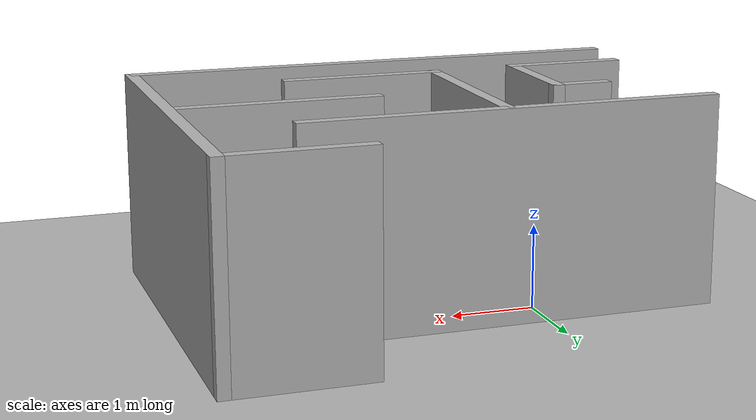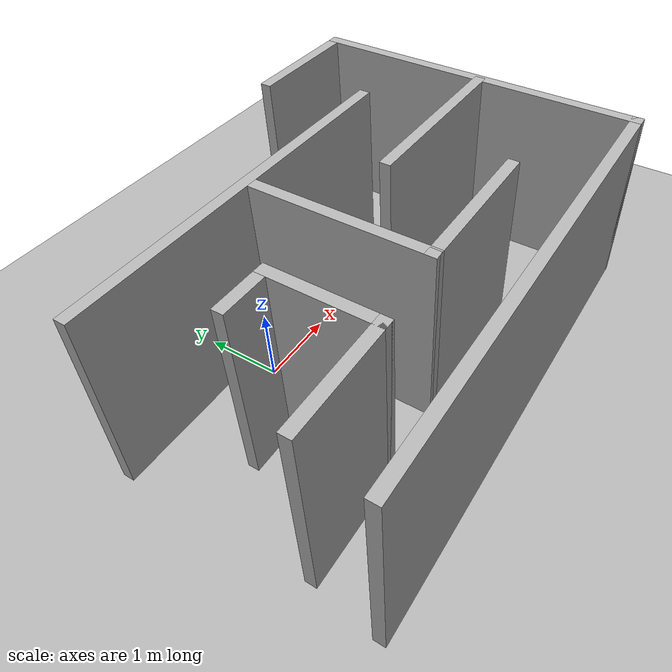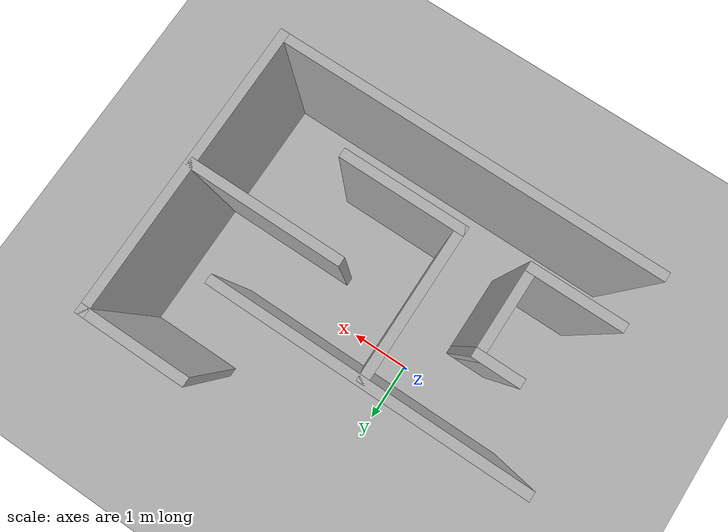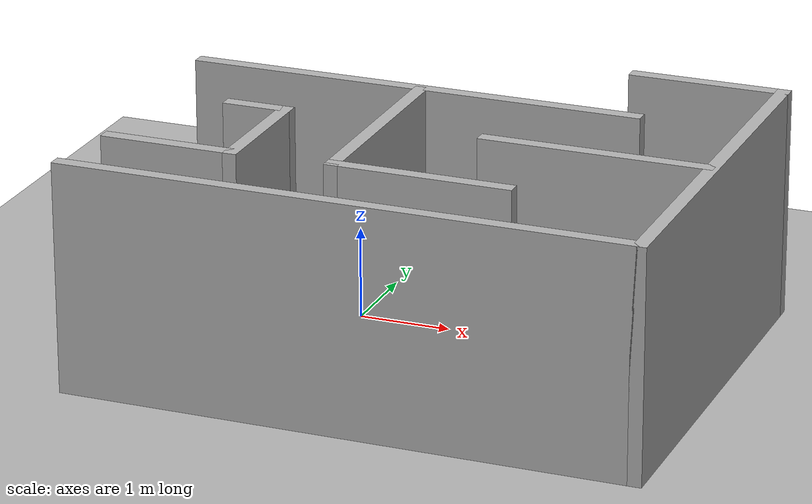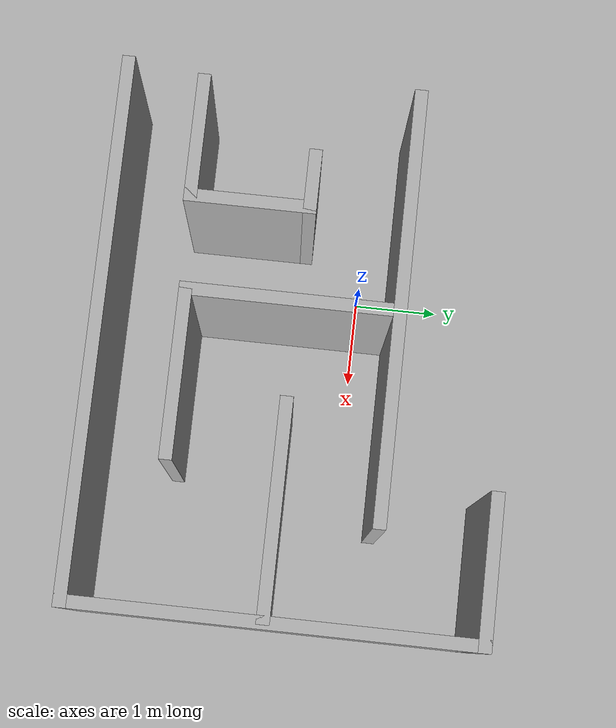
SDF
<sdf version='1.7'>
  <world name='default'>
    <light name='sun' type='directional'>
      <cast_shadows>1</cast_shadows>
      <pose>0 0 10 0 -0 0</pose>
      <diffuse>0.8 0.8 0.8 1</diffuse>
      <specular>0.2 0.2 0.2 1</specular>
      <attenuation>
        <range>1000</range>
        <constant>0.9</constant>
        <linear>0.01</linear>
        <quadratic>0.001</quadratic>
      </attenuation>
      <direction>-0.5 0.1 -0.9</direction>
      <spot>
        <inner_angle>0</inner_angle>
        <outer_angle>0</outer_angle>
        <falloff>0</falloff>
      </spot>
    </light>
    <model name='ground_plane'>
      <static>1</static>
      <link name='link'>
        <collision name='collision'>
          <geometry>
            <plane>
              <normal>0 0 1</normal>
              <size>100 100</size>
            </plane>
          </geometry>
          <surface>
            <contact>
              <collide_bitmask>65535</collide_bitmask>
              <ode/>
            </contact>
            <friction>
              <ode>
                <mu>100</mu>
                <mu2>50</mu2>
              </ode>
              <torsional>
                <ode/>
              </torsional>
            </friction>
            <bounce/>
          </surface>
          <max_contacts>10</max_contacts>
        </collision>
        <visual name='visual'>
          <cast_shadows>0</cast_shadows>
          <geometry>
            <plane>
              <normal>0 0 1</normal>
              <size>100 100</size>
            </plane>
          </geometry>
          <material>
            <ambient>0.7 0.7 0.7 1</ambient>
            <diffuse>0.7 0.7 0.7 1</diffuse>
            <specular>0.1 0.1 0.1 1</specular>
          </material>
        </visual>
        <self_collide>0</self_collide>
        <enable_wind>0</enable_wind>
        <kinematic>0</kinematic>
      </link>
    </model>
    <gravity>0 0 -9.8</gravity>
    <magnetic_field>6e-06 2.3e-05 -4.2e-05</magnetic_field>
    <atmosphere type='adiabatic'/>
    <physics type='ode'>
      <max_step_size>0.001</max_step_size>
      <real_time_factor>1</real_time_factor>
      <real_time_update_rate>1000</real_time_update_rate>
    </physics>
    <scene>
      <ambient>0.4 0.4 0.4 1</ambient>
      <background>0.7 0.7 0.7 1</background>
      <shadows>1</shadows>
    </scene>
    <audio>
      <device>default</device>
    </audio>
    <wind/>
    <spherical_coordinates>
      <surface_model>EARTH_WGS84</surface_model>
      <latitude_deg>0</latitude_deg>
      <longitude_deg>0</longitude_deg>
      <elevation>0</elevation>
      <heading_deg>0</heading_deg>
    </spherical_coordinates>
    <model name='world_turtle'>
      <pose>1.02679 -0.048222 0 0 -0 0</pose>
      <link name='Wall_0'>
        <collision name='Wall_0_Collision'>
          <geometry>
            <box>
              <size>4.5 0.15 2.5</size>
            </box>
          </geometry>
          <pose>0 0 1.25 0 -0 0</pose>
          <max_contacts>10</max_contacts>
          <surface>
            <contact>
              <ode/>
            </contact>
            <bounce/>
            <friction>
              <torsional>
                <ode/>
              </torsional>
              <ode/>
            </friction>
          </surface>
        </collision>
        <sdf version='1.7'>
  <world name='default'>
    <light name='sun' type='directional'>
      <cast_shadows>1</cast_shadows>
      <pose>0 0 10 0 -0 0</pose>
      <diffuse>0.8 0.8 0.8 1</diffuse>
      <specular>0.2 0.2 0.2 1</specular>
      <attenuation>
        <range>1000</range>
        <constant>0.9</constant>
        <linear>0.01</linear>
        <quadratic>0.001</quadratic>
      </attenuation>
      <direction>-0.5 0.1 -0.9</direction>
      <spot>
        <inner_angle>0</inner_angle>
        <outer_angle>0</outer_angle>
        <falloff>0</falloff>
      </spot>
    </light>
    <model name='ground_plane'>
      <static>1</static>
      <link name='link'>
        <collision name='collision'>
          <geometry>
            <plane>
              <normal>0 0 1</normal>
              <size>100 100</size>
            </plane>
          </geometry>
          <surface>
            <contact>
              <collide_bitmask>65535</collide_bitmask>
              <ode/>
            </contact>
            <friction>
              <ode>
                <mu>100</mu>
                <mu2>50</mu2>
              </ode>
              <torsional>
                <ode/>
              </torsional>
            </friction>
            <bounce/>
          </surface>
          <max_contacts>10</max_contacts>
        </collision>
        <visual name='visual'>
          <cast_shadows>0</cast_shadows>
          <geometry>
            <plane>
              <normal>0 0 1</normal>
              <size>100 100</size>
            </plane>
          </geometry>
          <material>
            <ambient>0.7 0.7 0.7 1</ambient>
            <diffuse>0.7 0.7 0.7 1</diffuse>
            <specular>0.1 0.1 0.1 1</specular>
          </material>
        </visual>
        <self_collide>0</self_collide>
        <enable_wind>0</enable_wind>
        <kinematic>0</kinematic>
      </link>
    </model>
    <gravity>0 0 -9.8</gravity>
    <magnetic_field>6e-06 2.3e-05 -4.2e-05</magnetic_field>
    <atmosphere type='adiabatic'/>
    <physics type='ode'>
      <max_step_size>0.001</max_step_size>
      <real_time_factor>1</real_time_factor>
      <real_time_update_rate>1000</real_time_update_rate>
    </physics>
    <scene>
      <ambient>0.4 0.4 0.4 1</ambient>
      <background>0.7 0.7 0.7 1</background>
      <shadows>1</shadows>
    </scene>
    <audio>
      <device>default</device>
    </audio>
    <wind/>
    <spherical_coordinates>
      <surface_model>EARTH_WGS84</surface_model>
      <latitude_deg>0</latitude_deg>
      <longitude_deg>0</longitude_deg>
      <elevation>0</elevation>
      <heading_deg>0</heading_deg>
    </spherical_coordinates>
    <model name='world_turtle'>
      <pose>1.02679 -0.048222 0 0 -0 0</pose>
      <link name='Wall_0'>
        <collision name='Wall_0_Collision'>
          <geometry>
            <box>
              <size>4.5 0.15 2.5</size>
            </box>
          </geometry>
          <pose>0 0 1.25 0 -0 0</pose>
          <max_contacts>10</max_contacts>
          <surface>
            <contact>
              <ode/>
            </contact>
            <bounce/>
            <friction>
              <torsional>
                <ode/>
              </torsional>
              <ode/>
            </friction>
          </surface>
        </collision>
        <visual name='Wall_0_Visual'>
          <pose>0 0 1.25 0 -0 0</pose>
          <geometry>
            <box>
              <size>4.5 0.15 2.5</size>
            </box>
          </geometry>
          <material>
            <script>
              <material>
  <ambient>0.7 0.7 0.7 1</ambient>
  <diffuse>0.7 0.7 0.7 1</diffuse>
  <specular>0.1 0.1 0.1 1</specular>
</material>
            </script>
            <ambient>1 1 1 1</ambient>
          </material>
          <meta>
            <layer>0</layer>
          </meta>
        </visual>
        <pose>-3.05 -0.6875 0 0 -0 -1.5708</pose>
        <self_collide>0</self_collide>
        <enable_wind>0</enable_wind>
        <kinematic>0</kinematic>
      </link>
      <link name='Wall_1'>
        <collision name='Wall_1_Collision'>
          <geometry>
            <box>
              <size>6.25 0.15 2.5</size>
            </box>
          </geometry>
          <pose>0 0 1.25 0 -0 0</pose>
          <max_contacts>10</max_contacts>
          <surface>
            <contact>
              <ode/>
            </contact>
            <bounce/>
            <friction>
              <torsional>
                <ode/>
              </torsional>
              <ode/>
            </friction>
          </surface>
        </collision>
        <visual name='Wall_1_Visual'>
          <pose>0 0 1.25 0 -0 0</pose>
          <geometry>
            <box>
              <size>6.25 0.15 2.5</size>
            </box>
          </geometry>
          <material>
  <ambient>0.7 0.7 0.7 1</ambient>
  <diffuse>0.7 0.7 0.7 1</diffuse>
  <specular>0.1 0.1 0.1 1</specular>
</material>
          <meta>
            <layer>0</layer>
          </meta>
        </visual>
        <pose>0 -2.8625 0 0 -0 0</pose>
        <self_collide>0</self_collide>
        <enable_wind>0</enable_wind>
        <kinematic>0</kinematic>
      </link>
      <link name='Wall_11'>
        <collision name='Wall_11_Collision'>
          <geometry>
            <box>
              <size>2 0.15 2.5</size>
            </box>
          </geometry>
          <pose>0 0 1.25 0 -0 0</pose>
          <max_contacts>10</max_contacts>
          <surface>
            <contact>
              <ode/>
            </contact>
            <bounce/>
            <friction>
              <torsional>
                <ode/>
              </torsional>
              <ode/>
            </friction>
          </surface>
        </collision>
        <visual name='Wall_11_Visual'>
          <pose>0 0 1.25 0 -0 0</pose>
          <geometry>
            <box>
              <size>2 0.15 2.5</size>
            </box>
          </geometry>
         <material>
  <ambient>0.7 0.7 0.7 1</ambient>
  <diffuse>0.7 0.7 0.7 1</diffuse>
  <specular>0.1 0.1 0.1 1</specular>
</material>
          <meta>
            <layer>0</layer>
          </meta>
        </visual>
        <pose>0.415 -1.9125 0 0 -0 0</pose>
        <self_collide>0</self_collide>
        <enable_wind>0</enable_wind>
        <kinematic>0</kinematic>
      </link>
      <link name='Wall_13'>
        <collision name='Wall_13_Collision'>
          <geometry>
            <box>
              <size>1.5 0.15 2.5</size>
            </box>
          </geometry>
          <pose>0 0 1.25 0 -0 0</pose>
          <max_contacts>10</max_contacts>
          <surface>
            <contact>
              <ode/>
            </contact>
            <bounce/>
            <friction>
              <torsional>
                <ode/>
              </torsional>
              <ode/>
            </friction>
          </surface>
        </collision>
        <visual name='Wall_13_Visual'>
          <pose>0 0 1.25 0 -0 0</pose>
          <geometry>
            <box>
              <size>1.5 0.15 2.5</size>
            </box>
          </geometry>
          <material>
  <ambient>0.7 0.7 0.7 1</ambient>
  <diffuse>0.7 0.7 0.7 1</diffuse>
  <specular>0.1 0.1 0.1 1</specular>
</material>
          <meta>
            <layer>0</layer>
          </meta>
        </visual>
        <pose>-2.255 -1.9825 0 0 -0 0</pose>
        <self_collide>0</self_collide>
        <enable_wind>0</enable_wind>
        <kinematic>0</kinematic>
      </link>
      <link name='Wall_14'>
        <collision name='Wall_14_Collision'>
          <geometry>
            <box>
              <size>1.5 0.15 2.5</size>
            </box>
          </geometry>
          <pose>0 0 1.25 0 -0 0</pose>
          <max_contacts>10</max_contacts>
          <surface>
            <contact>
              <ode/>
            </contact>
            <bounce/>
            <friction>
              <torsional>
                <ode/>
              </torsional>
              <ode/>
            </friction>
          </surface>
        </collision>
        <visual name='Wall_14_Visual'>
          <pose>0 0 1.25 0 -0 0</pose>
          <geometry>
            <box>
              <size>1.5 0.15 2.5</size>
            </box>
          </geometry>
          <material>
  <ambient>0.7 0.7 0.7 1</ambient>
  <diffuse>0.7 0.7 0.7 1</diffuse>
  <specular>0.1 0.1 0.1 1</specular>
</material>
          <meta>
            <layer>0</layer>
          </meta>
        </visual>
        <pose>-1.58 -1.3075 0 0 -0 1.5708</pose>
        <self_collide>0</self_collide>
        <enable_wind>0</enable_wind>
        <kinematic>0</kinematic>
      </link>
      <link name='Wall_15'>
        <collision name='Wall_15_Collision'>
          <geometry>
            <box>
              <size>0.75 0.15 2.5</size>
            </box>
          </geometry>
          <pose>0 0 1.25 0 -0 0</pose>
          <max_contacts>10</max_contacts>
          <surface>
            <contact>
              <ode/>
            </contact>
            <bounce/>
            <friction>
              <torsional>
                <ode/>
              </torsional>
              <ode/>
            </friction>
          </surface>
        </collision>
        <visual name='Wall_15_Visual'>
          <pose>0 0 1.25 0 -0 0</pose>
          <geometry>
            <box>
              <size>0.75 0.15 2.5</size>
            </box>
          </geometry>
          <material>
  <ambient>0.7 0.7 0.7 1</ambient>
  <diffuse>0.7 0.7 0.7 1</diffuse>
  <specular>0.1 0.1 0.1 1</specular>
</material>
          <meta>
            <layer>0</layer>
          </meta>
        </visual>
        <pose>-1.88 -0.6325 0 0 -0 3.14159</pose>
        <self_collide>0</self_collide>
        <enable_wind>0</enable_wind>
        <kinematic>0</kinematic>
      </link>
      <link name='Wall_2'>
        <collision name='Wall_2_Collision'>
          <geometry>
            <box>
              <size>4.75 0.15 2.5</size>
            </box>
          </geometry>
          <pose>0 0 1.25 0 -0 0</pose>
          <max_contacts>10</max_contacts>
          <surface>
            <contact>
              <ode/>
            </contact>
            <bounce/>
            <friction>
              <torsional>
                <ode/>
              </torsional>
              <ode/>
            </friction>
          </surface>
        </collision>
        <visual name='Wall_2_Visual'>
          <pose>0 0 1.25 0 -0 0</pose>
          <geometry>
            <box>
              <size>4.75 0.15 2.5</size>
            </box>
          </geometry>
          <material>
  <ambient>0.7 0.7 0.7 1</ambient>
  <diffuse>0.7 0.7 0.7 1</diffuse>
  <specular>0.1 0.1 0.1 1</specular>
</material>
          <meta>
            <layer>0</layer>
          </meta>
        </visual>
        <pose>3.05 -0.5625 0 0 -0 1.5708</pose>
        <self_collide>0</self_collide>
        <enable_wind>0</enable_wind>
        <kinematic>0</kinematic>
      </link>
      <link name='Wall_3'>
        <collision name='Wall_3_Collision'>
          <geometry>
            <box>
              <size>1.75 0.15 2.5</size>
            </box>
          </geometry>
          <pose>0 0 1.25 0 -0 0</pose>
          <max_contacts>10</max_contacts>
          <surface>
            <contact>
              <ode/>
            </contact>
            <bounce/>
            <friction>
              <torsional>
                <ode/>
              </torsional>
              <ode/>
            </friction>
          </surface>
        </collision>
        <visual name='Wall_3_Visual'>
          <pose>0 0 1.25 0 -0 0</pose>
          <geometry>
            <box>
              <size>1.75 0.15 2.5</size>
            </box>
          </geometry>
          <material>
  <ambient>0.7 0.7 0.7 1</ambient>
  <diffuse>0.7 0.7 0.7 1</diffuse>
  <specular>0.1 0.1 0.1 1</specular>
</material>
          <meta>
            <layer>0</layer>
          </meta>
        </visual>
        <pose>2.25 1.7375 0 0 -0 3.14159</pose>
        <self_collide>0</self_collide>
        <enable_wind>0</enable_wind>
        <kinematic>0</kinematic>
      </link>
      <link name='Wall_5'>
        <collision name='Wall_5_Collision'>
          <geometry>
            <box>
              <size>5 0.15 2.5</size>
            </box>
          </geometry>
          <pose>0 0 1.25 0 -0 0</pose>
          <max_contacts>10</max_contacts>
          <surface>
            <contact>
              <ode/>
            </contact>
            <bounce/>
            <friction>
              <torsional>
                <ode/>
              </torsional>
              <ode/>
            </friction>
          </surface>
        </collision>
        <visual name='Wall_5_Visual'>
          <pose>0 0 1.25 0 -0 0</pose>
          <geometry>
            <box>
              <size>5 0.15 2.5</size>
            </box>
          </geometry>
          <material>
  <ambient>0.7 0.7 0.7 1</ambient>
  <diffuse>0.7 0.7 0.7 1</diffuse>
  <specular>0.1 0.1 0.1 1</specular>
</material>
          <meta>
            <layer>0</layer>
          </meta>
        </visual>
        <pose>-0.575 0.4875 0 0 -0 0</pose>
        <self_collide>0</self_collide>
        <enable_wind>0</enable_wind>
        <kinematic>0</kinematic>
      </link>
      <link name='Wall_7'>
        <collision name='Wall_7_Collision'>
          <geometry>
            <box>
              <size>2.5 0.15 2.5</size>
            </box>
          </geometry>
          <pose>0 0 1.25 0 -0 0</pose>
          <max_contacts>10</max_contacts>
          <surface>
            <contact>
              <ode/>
            </contact>
            <bounce/>
            <friction>
              <torsional>
                <ode/>
              </torsional>
              <ode/>
            </friction>
          </surface>
        </collision>
        <visual name='Wall_7_Visual'>
          <pose>0 0 1.25 0 -0 0</pose>
          <geometry>
            <box>
              <size>2.5 0.15 2.5</size>
            </box>
          </geometry>
          <material>
  <ambient>0.7 0.7 0.7 1</ambient>
  <diffuse>0.7 0.7 0.7 1</diffuse>
  <specular>0.1 0.1 0.1 1</specular>
</material>
          <meta>
            <layer>0</layer>
          </meta>
        </visual>
        <pose>1.825 -0.6625 0 0 -0 0</pose>
        <self_collide>0</self_collide>
        <enable_wind>0</enable_wind>
        <kinematic>0</kinematic>
      </link>
      <link name='Wall_9'>
        <collision name='Wall_9_Collision'>
          <geometry>
            <box>
              <size>2.5 0.15 2.5</size>
            </box>
          </geometry>
          <pose>0 0 1.25 0 -0 0</pose>
          <max_contacts>10</max_contacts>
          <surface>
            <contact>
              <ode/>
            </contact>
            <bounce/>
            <friction>
              <torsional>
                <ode/>
              </torsional>
              <ode/>
            </friction>
          </surface>
        </collision>
        <visual name='Wall_9_Visual'>
          <pose>0 0 1.25 0 -0 0</pose>
          <geometry>
            <box>
              <size>2.5 0.15 2.5</size>
            </box>
          </geometry>
          <material>
  <ambient>0.7 0.7 0.7 1</ambient>
  <diffuse>0.7 0.7 0.7 1</diffuse>
  <specular>0.1 0.1 0.1 1</specular>
</material>
          <meta>
            <layer>0</layer>
          </meta>
        </visual>
        <pose>-0.51 -0.7375 0 0 -0 -1.5708</pose>
        <self_collide>0</self_collide>
        <enable_wind>0</enable_wind>
        <kinematic>0</kinematic>
      </link>
      <static>1</static>
    </model>

    <gui fullscreen='0'>
      <camera name='user_camera'>
        <pose>-11.7183 -12.1253 10.7667 0 0.66811 0.710004</pose>
        <view_controller>orbit</view_controller>
        <projection_type>perspective</projection_type>
      </camera>
    </gui>
    <light name='user_spot_light_0' type='spot'>
      <pose>0.33211 -0.957928 1 0 -0 0</pose>
      <diffuse>0.5 0.5 0.5 1</diffuse>
      <specular>0.1 0.1 0.1 1</specular>
      <direction>0 0 -1</direction>
      <attenuation>
        <range>20</range>
        <constant>0.5</constant>
        <linear>0.01</linear>
        <quadratic>0.001</quadratic>
      </attenuation>
      <cast_shadows>0</cast_shadows>
      <spot>
        <inner_angle>0.6</inner_angle>
        <outer_angle>1</outer_angle>
        <falloff>1</falloff>
      </spot>
    </light>
  </world>
</sdf>

        <pose>-3.05 -0.6875 0 0 -0 -1.5708</pose>
        <self_collide>0</self_collide>
        <enable_wind>0</enable_wind>
        <kinematic>0</kinematic>
      </link>
      <link name='Wall_1'>
        <collision name='Wall_1_Collision'>
          <geometry>
            <box>
              <size>6.25 0.15 2.5</size>
            </box>
          </geometry>
          <pose>0 0 1.25 0 -0 0</pose>
          <max_contacts>10</max_contacts>
          <surface>
            <contact>
              <ode/>
            </contact>
            <bounce/>
            <friction>
              <torsional>
                <ode/>
              </torsional>
              <ode/>
            </friction>
          </surface>
        </collision>
        <visual name='Wall_1_Visual'>
          <pose>0 0 1.25 0 -0 0</pose>
          <geometry>
            <box>
              <size>6.25 0.15 2.5</size>
            </box>
          </geometry>
          <material>
  <ambient>0.7 0.7 0.7 1</ambient>
  <diffuse>0.7 0.7 0.7 1</diffuse>
  <specular>0.1 0.1 0.1 1</specular>
</material>
          <meta>
            <layer>0</layer>
          </meta>
        </visual>
        <pose>0 -2.8625 0 0 -0 0</pose>
        <self_collide>0</self_collide>
        <enable_wind>0</enable_wind>
        <kinematic>0</kinematic>
      </link>
      <link name='Wall_11'>
        <collision name='Wall_11_Collision'>
          <geometry>
            <box>
              <size>2 0.15 2.5</size>
            </box>
          </geometry>
          <pose>0 0 1.25 0 -0 0</pose>
          <max_contacts>10</max_contacts>
          <surface>
            <contact>
              <ode/>
            </contact>
            <bounce/>
            <friction>
              <torsional>
                <ode/>
              </torsional>
              <ode/>
            </friction>
          </surface>
        </collision>
        <visual name='Wall_11_Visual'>
          <pose>0 0 1.25 0 -0 0</pose>
          <geometry>
            <box>
              <size>2 0.15 2.5</size>
            </box>
          </geometry>
         <material>
  <ambient>0.7 0.7 0.7 1</ambient>
  <diffuse>0.7 0.7 0.7 1</diffuse>
  <specular>0.1 0.1 0.1 1</specular>
</material>
          <meta>
            <layer>0</layer>
          </meta>
        </visual>
        <pose>0.415 -1.9125 0 0 -0 0</pose>
        <self_collide>0</self_collide>
        <enable_wind>0</enable_wind>
        <kinematic>0</kinematic>
      </link>
      <link name='Wall_13'>
        <collision name='Wall_13_Collision'>
          <geometry>
            <box>
              <size>1.5 0.15 2.5</size>
            </box>
          </geometry>
          <pose>0 0 1.25 0 -0 0</pose>
          <max_contacts>10</max_contacts>
          <surface>
            <contact>
              <ode/>
            </contact>
            <bounce/>
            <friction>
              <torsional>
                <ode/>
              </torsional>
              <ode/>
            </friction>
          </surface>
        </collision>
        <visual name='Wall_13_Visual'>
          <pose>0 0 1.25 0 -0 0</pose>
          <geometry>
            <box>
              <size>1.5 0.15 2.5</size>
            </box>
          </geometry>
          <material>
  <ambient>0.7 0.7 0.7 1</ambient>
  <diffuse>0.7 0.7 0.7 1</diffuse>
  <specular>0.1 0.1 0.1 1</specular>
</material>
          <meta>
            <layer>0</layer>
          </meta>
        </visual>
        <pose>-2.255 -1.9825 0 0 -0 0</pose>
        <self_collide>0</self_collide>
        <enable_wind>0</enable_wind>
        <kinematic>0</kinematic>
      </link>
      <link name='Wall_14'>
        <collision name='Wall_14_Collision'>
          <geometry>
            <box>
              <size>1.5 0.15 2.5</size>
            </box>
          </geometry>
          <pose>0 0 1.25 0 -0 0</pose>
          <max_contacts>10</max_contacts>
          <surface>
            <contact>
              <ode/>
            </contact>
            <bounce/>
            <friction>
              <torsional>
                <ode/>
              </torsional>
              <ode/>
            </friction>
          </surface>
        </collision>
        <visual name='Wall_14_Visual'>
          <pose>0 0 1.25 0 -0 0</pose>
          <geometry>
            <box>
              <size>1.5 0.15 2.5</size>
            </box>
          </geometry>
          <material>
  <ambient>0.7 0.7 0.7 1</ambient>
  <diffuse>0.7 0.7 0.7 1</diffuse>
  <specular>0.1 0.1 0.1 1</specular>
</material>
          <meta>
            <layer>0</layer>
          </meta>
        </visual>
        <pose>-1.58 -1.3075 0 0 -0 1.5708</pose>
        <self_collide>0</self_collide>
        <enable_wind>0</enable_wind>
        <kinematic>0</kinematic>
      </link>
      <link name='Wall_15'>
        <collision name='Wall_15_Collision'>
          <geometry>
            <box>
              <size>0.75 0.15 2.5</size>
            </box>
          </geometry>
          <pose>0 0 1.25 0 -0 0</pose>
          <max_contacts>10</max_contacts>
          <surface>
            <contact>
              <ode/>
            </contact>
            <bounce/>
            <friction>
              <torsional>
                <ode/>
              </torsional>
              <ode/>
            </friction>
          </surface>
        </collision>
        <visual name='Wall_15_Visual'>
          <pose>0 0 1.25 0 -0 0</pose>
          <geometry>
            <box>
              <size>0.75 0.15 2.5</size>
            </box>
          </geometry>
          <material>
  <ambient>0.7 0.7 0.7 1</ambient>
  <diffuse>0.7 0.7 0.7 1</diffuse>
  <specular>0.1 0.1 0.1 1</specular>
</material>
          <meta>
            <layer>0</layer>
          </meta>
        </visual>
        <pose>-1.88 -0.6325 0 0 -0 3.14159</pose>
        <self_collide>0</self_collide>
        <enable_wind>0</enable_wind>
        <kinematic>0</kinematic>
      </link>
      <link name='Wall_2'>
        <collision name='Wall_2_Collision'>
          <geometry>
            <box>
              <size>4.75 0.15 2.5</size>
            </box>
          </geometry>
          <pose>0 0 1.25 0 -0 0</pose>
          <max_contacts>10</max_contacts>
          <surface>
            <contact>
              <ode/>
            </contact>
            <bounce/>
            <friction>
              <torsional>
                <ode/>
              </torsional>
              <ode/>
            </friction>
          </surface>
        </collision>
        <visual name='Wall_2_Visual'>
          <pose>0 0 1.25 0 -0 0</pose>
          <geometry>
            <box>
              <size>4.75 0.15 2.5</size>
            </box>
          </geometry>
          <material>
  <ambient>0.7 0.7 0.7 1</ambient>
  <diffuse>0.7 0.7 0.7 1</diffuse>
  <specular>0.1 0.1 0.1 1</specular>
</material>
          <meta>
            <layer>0</layer>
          </meta>
        </visual>
        <pose>3.05 -0.5625 0 0 -0 1.5708</pose>
        <self_collide>0</self_collide>
        <enable_wind>0</enable_wind>
        <kinematic>0</kinematic>
      </link>
      <link name='Wall_3'>
        <collision name='Wall_3_Collision'>
          <geometry>
            <box>
              <size>1.75 0.15 2.5</size>
            </box>
          </geometry>
          <pose>0 0 1.25 0 -0 0</pose>
          <max_contacts>10</max_contacts>
          <surface>
            <contact>
              <ode/>
            </contact>
            <bounce/>
            <friction>
              <torsional>
                <ode/>
              </torsional>
              <ode/>
            </friction>
          </surface>
        </collision>
        <visual name='Wall_3_Visual'>
          <pose>0 0 1.25 0 -0 0</pose>
          <geometry>
            <box>
              <size>1.75 0.15 2.5</size>
            </box>
          </geometry>
          <material>
  <ambient>0.7 0.7 0.7 1</ambient>
  <diffuse>0.7 0.7 0.7 1</diffuse>
  <specular>0.1 0.1 0.1 1</specular>
</material>
          <meta>
            <layer>0</layer>
          </meta>
        </visual>
        <pose>2.25 1.7375 0 0 -0 3.14159</pose>
        <self_collide>0</self_collide>
        <enable_wind>0</enable_wind>
        <kinematic>0</kinematic>
      </link>
      <link name='Wall_5'>
        <collision name='Wall_5_Collision'>
          <geometry>
            <box>
              <size>5 0.15 2.5</size>
            </box>
          </geometry>
          <pose>0 0 1.25 0 -0 0</pose>
          <max_contacts>10</max_contacts>
          <surface>
            <contact>
              <ode/>
            </contact>
            <bounce/>
            <friction>
              <torsional>
                <ode/>
              </torsional>
              <ode/>
            </friction>
          </surface>
        </collision>
        <visual name='Wall_5_Visual'>
          <pose>0 0 1.25 0 -0 0</pose>
          <geometry>
            <box>
              <size>5 0.15 2.5</size>
            </box>
          </geometry>
          <material>
  <ambient>0.7 0.7 0.7 1</ambient>
  <diffuse>0.7 0.7 0.7 1</diffuse>
  <specular>0.1 0.1 0.1 1</specular>
</material>
          <meta>
            <layer>0</layer>
          </meta>
        </visual>
        <pose>-0.575 0.4875 0 0 -0 0</pose>
        <self_collide>0</self_collide>
        <enable_wind>0</enable_wind>
        <kinematic>0</kinematic>
      </link>
      <link name='Wall_7'>
        <collision name='Wall_7_Collision'>
          <geometry>
            <box>
              <size>2.5 0.15 2.5</size>
            </box>
          </geometry>
          <pose>0 0 1.25 0 -0 0</pose>
          <max_contacts>10</max_contacts>
          <surface>
            <contact>
              <ode/>
            </contact>
            <bounce/>
            <friction>
              <torsional>
                <ode/>
              </torsional>
              <ode/>
            </friction>
          </surface>
        </collision>
        <visual name='Wall_7_Visual'>
          <pose>0 0 1.25 0 -0 0</pose>
          <geometry>
            <box>
              <size>2.5 0.15 2.5</size>
            </box>
          </geometry>
          <material>
  <ambient>0.7 0.7 0.7 1</ambient>
  <diffuse>0.7 0.7 0.7 1</diffuse>
  <specular>0.1 0.1 0.1 1</specular>
</material>
          <meta>
            <layer>0</layer>
          </meta>
        </visual>
        <pose>1.825 -0.6625 0 0 -0 0</pose>
        <self_collide>0</self_collide>
        <enable_wind>0</enable_wind>
        <kinematic>0</kinematic>
      </link>
      <link name='Wall_9'>
        <collision name='Wall_9_Collision'>
          <geometry>
            <box>
              <size>2.5 0.15 2.5</size>
            </box>
          </geometry>
          <pose>0 0 1.25 0 -0 0</pose>
          <max_contacts>10</max_contacts>
          <surface>
            <contact>
              <ode/>
            </contact>
            <bounce/>
            <friction>
              <torsional>
                <ode/>
              </torsional>
              <ode/>
            </friction>
          </surface>
        </collision>
        <visual name='Wall_9_Visual'>
          <pose>0 0 1.25 0 -0 0</pose>
          <geometry>
            <box>
              <size>2.5 0.15 2.5</size>
            </box>
          </geometry>
          <material>
  <ambient>0.7 0.7 0.7 1</ambient>
  <diffuse>0.7 0.7 0.7 1</diffuse>
  <specular>0.1 0.1 0.1 1</specular>
</material>
          <meta>
            <layer>0</layer>
          </meta>
        </visual>
        <pose>-0.51 -0.7375 0 0 -0 -1.5708</pose>
        <self_collide>0</self_collide>
        <enable_wind>0</enable_wind>
        <kinematic>0</kinematic>
      </link>
      <static>1</static>
    </model>

    <gui fullscreen='0'>
      <camera name='user_camera'>
        <pose>-11.7183 -12.1253 10.7667 0 0.66811 0.710004</pose>
        <view_controller>orbit</view_controller>
        <projection_type>perspective</projection_type>
      </camera>
    </gui>
    <light name='user_spot_light_0' type='spot'>
      <pose>0.33211 -0.957928 1 0 -0 0</pose>
      <diffuse>0.5 0.5 0.5 1</diffuse>
      <specular>0.1 0.1 0.1 1</specular>
      <direction>0 0 -1</direction>
      <attenuation>
        <range>20</range>
        <constant>0.5</constant>
        <linear>0.01</linear>
        <quadratic>0.001</quadratic>
      </attenuation>
      <cast_shadows>0</cast_shadows>
      <spot>
        <inner_angle>0.6</inner_angle>
        <outer_angle>1</outer_angle>
        <falloff>1</falloff>
      </spot>
    </light>
  </world>
</sdf>
